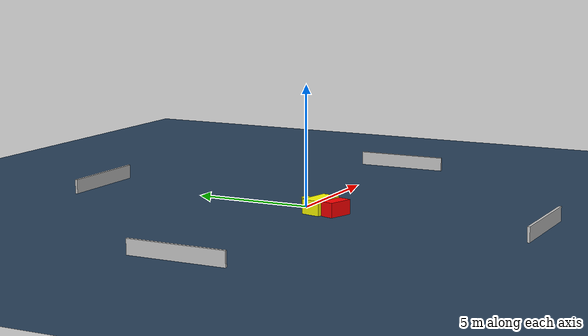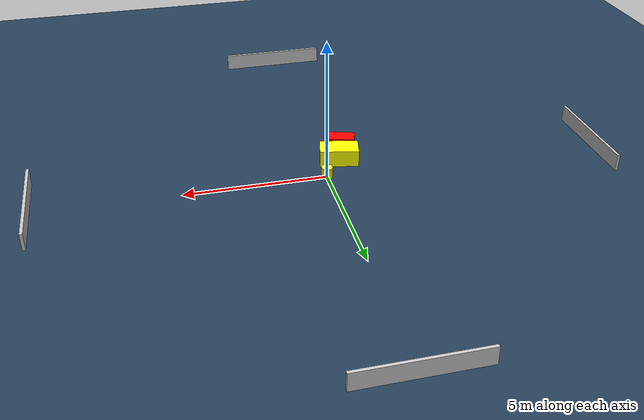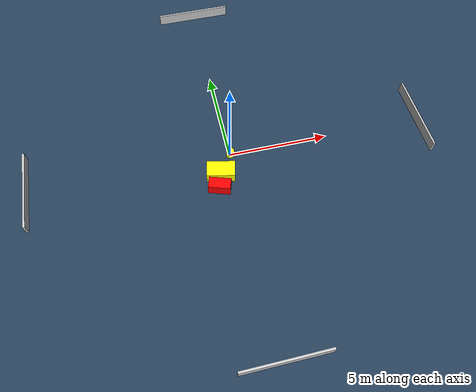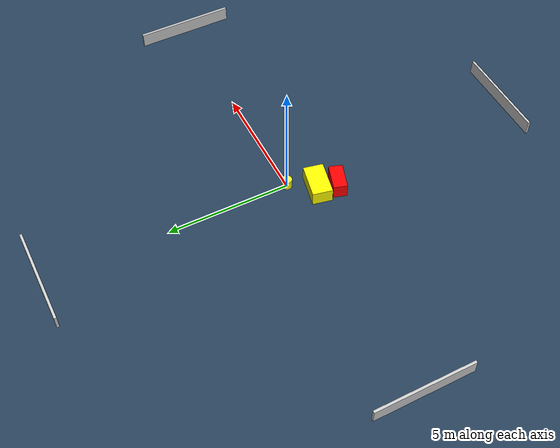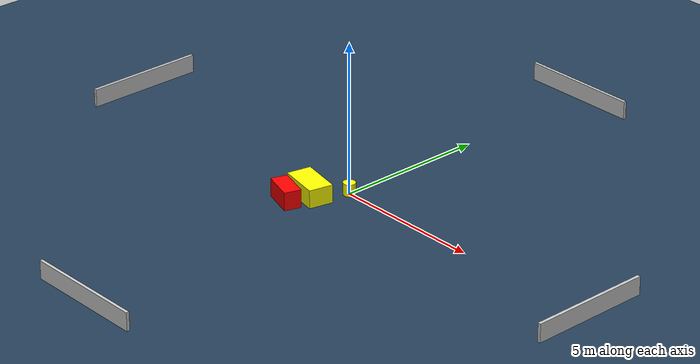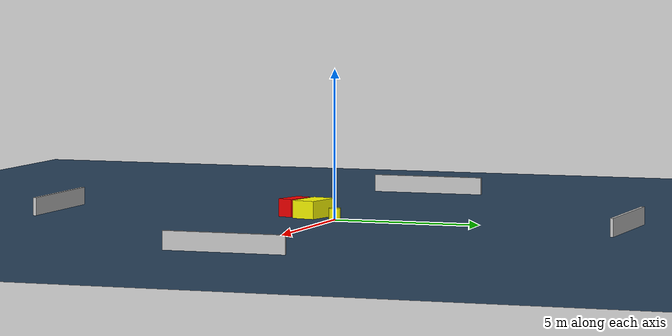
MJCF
<?xml version="1.0" ?>
<mujoco model="generated_environment">
  <option timestep="0.01" integrator="RK4" cone="elliptic"/>
  <default>
    <geom density="1"/>
  </default>
  <asset>
    <texture builtin="gradient" height="3072" name="skybox" rgb1="0.3 0.5 0.7" rgb2="0 0 0" type="skybox" width="512"/>
    <texture builtin="checker" height="300" name="groundplane" rgb1="0.2 0.3 0.4" rgb2="0.1 0.2 0.3" type="2d" width="300"/>
    <material name="groundplane" reflectance="0.2" texrepeat="5 5" texture="groundplane"/>
  </asset>
  <worldbody>
    <light dir="0 0 -1" directional="true" pos="0 0 1.5"/>
    <geom condim="3" friction="0.5 0.005 0.001" material="groundplane" name="floor" pos="0 0 0" size="0 0 0.05" type="plane"/>
    <body name="walls">
      <geom name="wall_1" condim="4" pos="-10.0 0.0 0.3" rgba="0.800000011920929 0.800000011920929 0.800000011920929 1.0" size="0.05 2.0 0.3" type="box"/>
      <geom name="wall_2" condim="4" pos="10.0 0.0 0.3" rgba="0.800000011920929 0.800000011920929 0.800000011920929 1.0" size="0.05 2.0 0.3" type="box"/>
      <geom name="wall_3" condim="4" pos="0.0 -10.0 0.3" rgba="0.800000011920929 0.800000011920929 0.800000011920929 1.0" size="2.0 0.05 0.3" type="box"/>
      <geom name="wall_4" condim="4" pos="0.0 10.0 0.3" rgba="0.800000011920929 0.800000011920929 0.800000011920929 1.0" size="2.0 0.05 0.3" type="box"/>
    </body>
    <body name="robot">
      <joint name="joint_x" type="slide" pos="0 0 0" axis="1 0 0"/>
      <joint name="joint_y" type="slide" pos="0 0 0" axis="0 1 0"/>
      <geom name="robot" type="cylinder" pos="0.0 0.0 0.2" size="0.2 0.2 0.0" mass="5.0" friction="1.0 0.005 0.0001" condim="4" rgba="1.0 1.0 0.0 1.0"/>
    </body>
    <body name="obstacle_1_movable">
      <geom name="obstacle_1_movable" condim="4" pos="-0.6819276302758028 -0.9880944990415261 0.3" euler="0 0 168.12641914043422" friction="0.0 0.005 0.001" rgba="1.0 1.0 0.0 1.0" size="0.687778081623281 0.40307762476096276 0.3" type="box" mass="0.1"/>
      <joint type="free"/>
    </body>
    <body name="obstacle_2_static">
      <geom name="obstacle_2_static" condim="4" pos="-0.9071195524610471 -1.7502452164081588 0.3" euler="0 0 342.06892021561964" friction="0.0 0.005 0.001" rgba="1.0 0.0 0.0 1.0" size="0.5328441191320217 0.2759251722014576 0.3" type="box"/>
    </body>
  </worldbody>
  <actuator>
    <motor name="actuator_x" joint="joint_x" gear="1" ctrlrange="-1 1"/>
    <motor name="actuator_y" joint="joint_y" gear="1" ctrlrange="-1 1"/>
  </actuator>
</mujoco>
